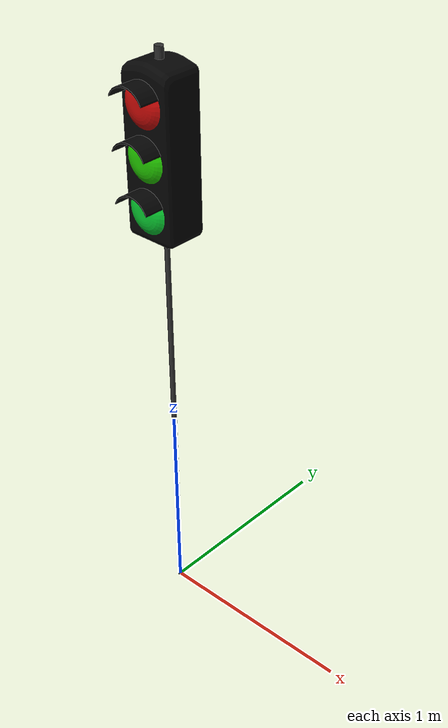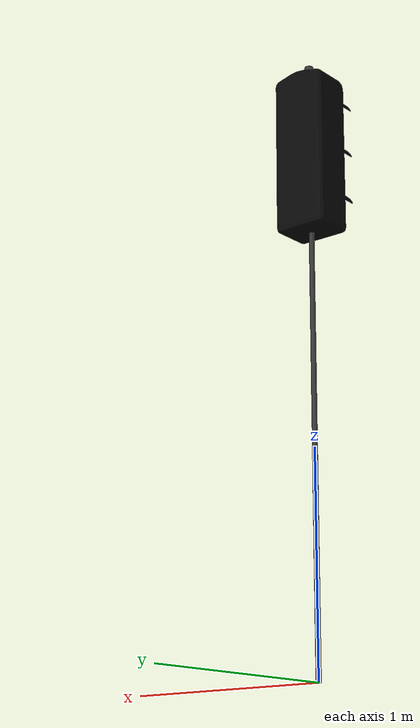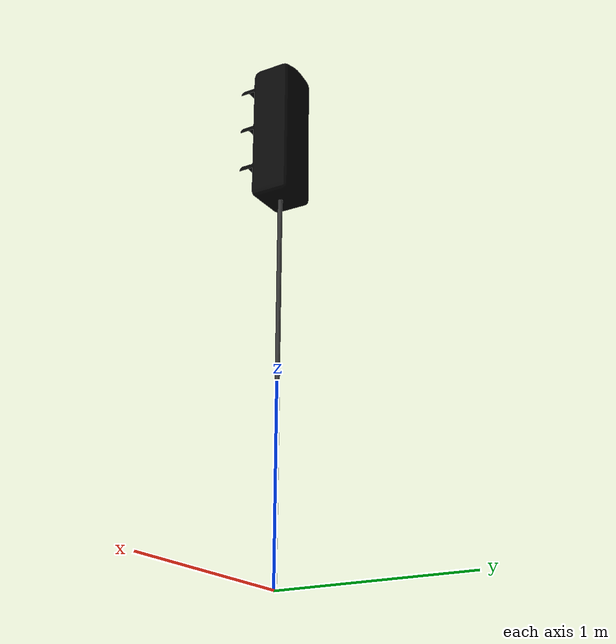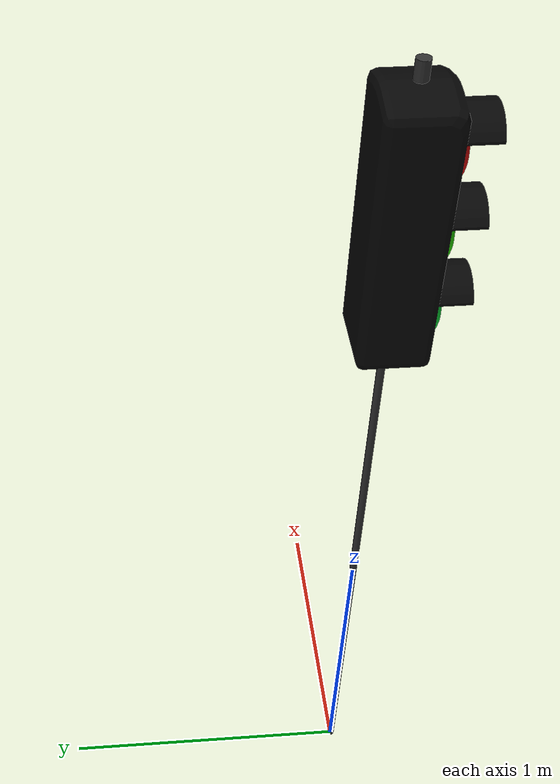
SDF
<?xml version="1.0" ?>
<sdf version="1.6">
  <model name="lamba">
    <static>true</static>
    <link name="link">
      <visual name="visual">
        <geometry>
          <mesh>
            <uri>model://lamba/meshes/model.dae</uri>
          </mesh>
        </geometry>
      </visual>
      <collision name="collision">
        <geometry>
          <mesh>
            <uri>model://lamba/meshes/model.dae</uri>
          </mesh>
        </geometry>
      </collision>
    </link>
  </model>
</sdf>
